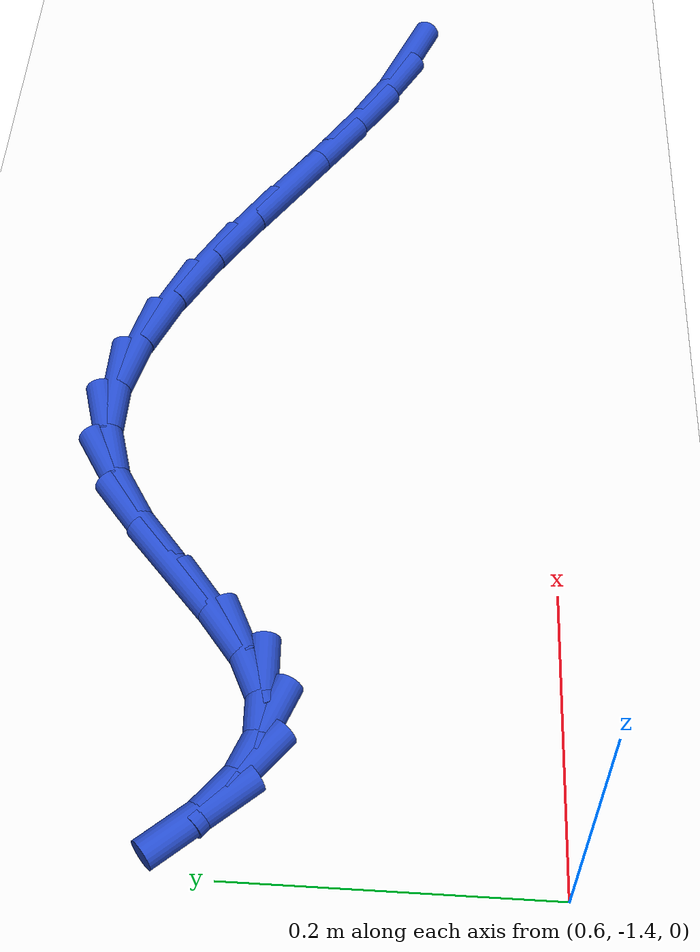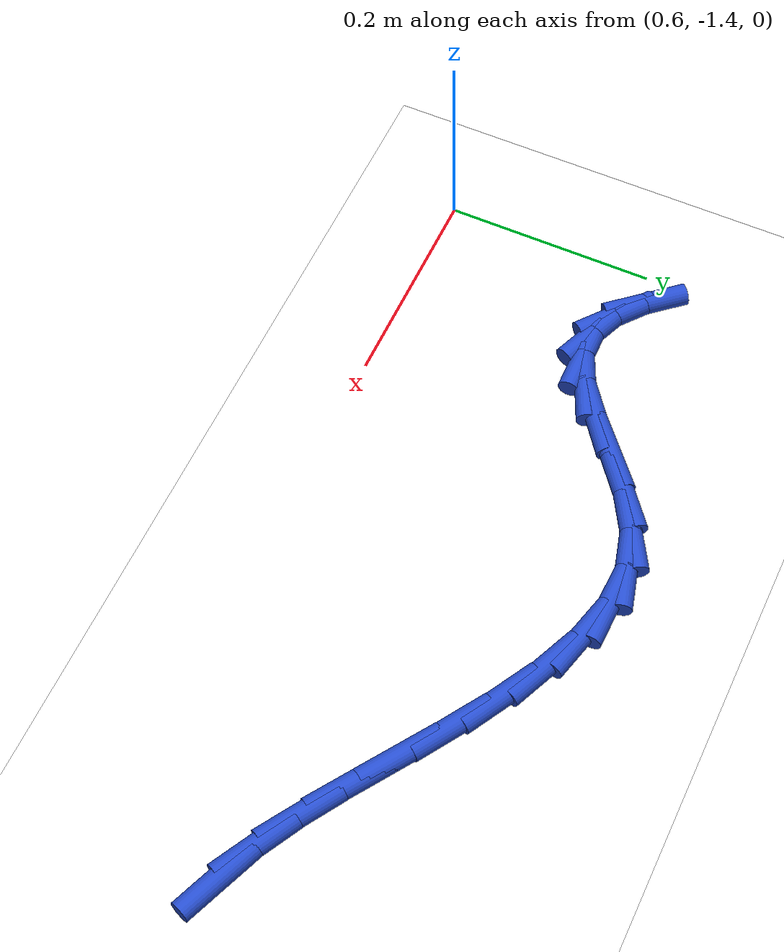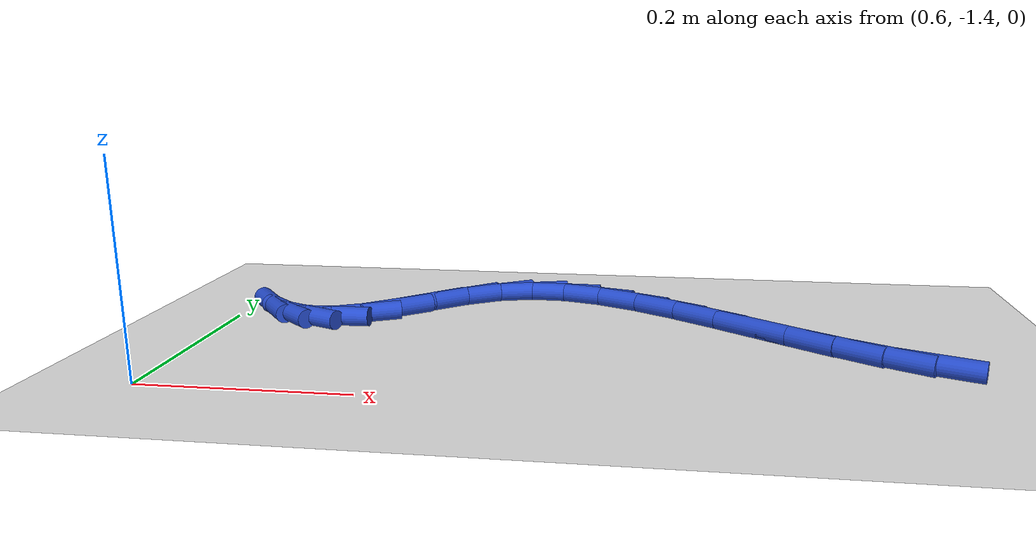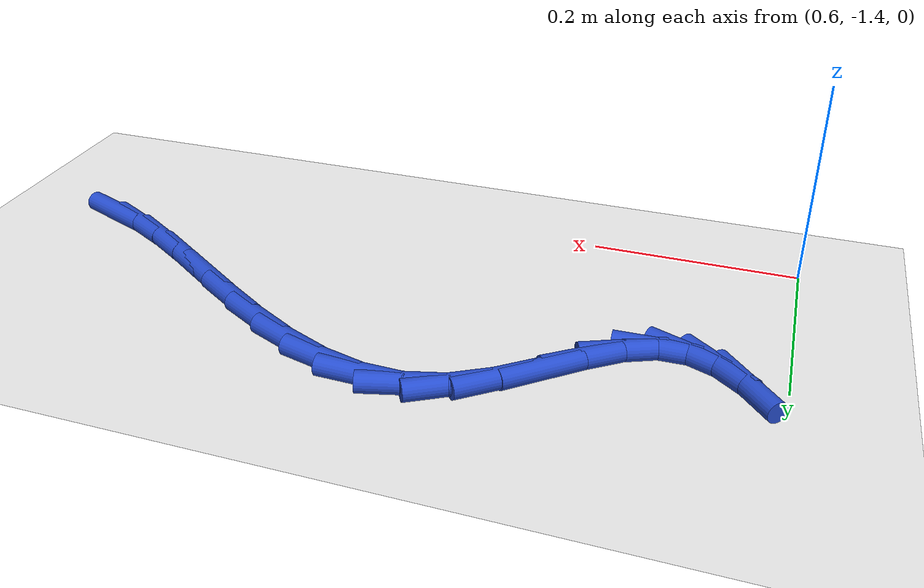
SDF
<sdf version="1.6">
 <world name="default">
  <model name="ground_plane">
   <static>1</static>
   <link name="link">
    <collision name="collision">
     <geometry><plane><normal>0 0 1</normal><size>100 100</size></plane></geometry>
     <surface><friction><ode><mu>100</mu><mu2>50</mu2></ode></friction></surface>
    </collision>
    <visual name="visual">
     <cast_shadows>0</cast_shadows>
     <geometry><plane><normal>0 0 1</normal><size>100 100</size></plane></geometry>
     <material>
      <script><uri>file://media/materials/scripts/gazebo.material</uri><name>Gazebo/WhiteGlow</name></script>
     </material>
    </visual>
   </link>
  </model>
  <model name="line">
   <link name="link_187">
    <pose>1.3002542062548703 -1.29245563052104 0.01 0 1.57 -0.3807308607366175</pose>
    <collision name="collision">
     <geometry><cylinder><radius>0.01</radius><length>0.08</length></cylinder></geometry>
    </collision>
    <visual name="visual">
     <material>
      <script><name>Gazebo/Blue</name><uri>file://media/materials/scripts/gazebo.material</uri></script>
     </material>
     <geometry><cylinder><radius>0.01</radius><length>0.08</length></cylinder></geometry>
    </visual>
   </link>
   <link name="link_188">
    <pose>1.2628305010286327 -1.2774764023848308 0.01 0 1.57 -0.4966049258590174</pose>
    <collision name="collision">
     <geometry><cylinder><radius>0.01</radius><length>0.08</length></cylinder></geometry>
    </collision>
    <visual name="visual">
     <material>
      <script><name>Gazebo/Blue</name><uri>file://media/materials/scripts/gazebo.material</uri></script>
     </material>
     <geometry><cylinder><radius>0.01</radius><length>0.08</length></cylinder></geometry>
    </visual>
   </link>
   <link name="link_189">
    <pose>1.2240627478774695 -1.2564680673103064 0.01 0 1.57 -0.5635573753410068</pose>
    <collision name="collision">
     <geometry><cylinder><radius>0.01</radius><length>0.08</length></cylinder></geometry>
    </collision>
    <visual name="visual">
     <material>
      <script><name>Gazebo/Blue</name><uri>file://media/materials/scripts/gazebo.material</uri></script>
     </material>
     <geometry><cylinder><radius>0.01</radius><length>0.08</length></cylinder></geometry>
    </visual>
   </link>
   <link name="link_190">
    <pose>1.1842756444777567 -1.2313259485014023 0.01 0 1.57 -0.5946891276298775</pose>
    <collision name="collision">
     <geometry><cylinder><radius>0.01</radius><length>0.08</length></cylinder></geometry>
    </collision>
    <visual name="visual">
     <material>
      <script><name>Gazebo/Blue</name><uri>file://media/materials/scripts/gazebo.material</uri></script>
     </material>
     <geometry><cylinder><radius>0.01</radius><length>0.08</length></cylinder></geometry>
    </visual>
   </link>
   <link name="link_191">
    <pose>1.1437938885058683 -1.203945369162052 0.01 0 1.57 -0.5962479622182153</pose>
    <collision name="collision">
     <geometry><cylinder><radius>0.01</radius><length>0.08</length></cylinder></geometry>
    </collision>
    <visual name="visual">
     <material>
      <script><name>Gazebo/Blue</name><uri>file://media/materials/scripts/gazebo.material</uri></script>
     </material>
     <geometry><cylinder><radius>0.01</radius><length>0.08</length></cylinder></geometry>
    </visual>
   </link>
   <link name="link_192">
    <pose>1.1029421776381783 -1.1762216524961897 0.01 0 1.57 -0.5692693241452842</pose>
    <collision name="collision">
     <geometry><cylinder><radius>0.01</radius><length>0.08</length></cylinder></geometry>
    </collision>
    <visual name="visual">
     <material>
      <script><name>Gazebo/Blue</name><uri>file://media/materials/scripts/gazebo.material</uri></script>
     </material>
     <geometry><cylinder><radius>0.01</radius><length>0.08</length></cylinder></geometry>
    </visual>
   </link>
   <link name="link_193">
    <pose>1.062045209551064 -1.1500501217077512 0.01 0 1.57 -0.5100797627270489</pose>
    <collision name="collision">
     <geometry><cylinder><radius>0.01</radius><length>0.08</length></cylinder></geometry>
    </collision>
    <visual name="visual">
     <material>
      <script><name>Gazebo/Blue</name><uri>file://media/materials/scripts/gazebo.material</uri></script>
     </material>
     <geometry><cylinder><radius>0.01</radius><length>0.08</length></cylinder></geometry>
    </visual>
   </link>
   <link name="link_194">
    <pose>1.021427681920899 -1.1273261000006705 0.01 0 1.57 -0.4097923331356147</pose>
    <collision name="collision">
     <geometry><cylinder><radius>0.01</radius><length>0.08</length></cylinder></geometry>
    </collision>
    <visual name="visual">
     <material>
      <script><name>Gazebo/Blue</name><uri>file://media/materials/scripts/gazebo.material</uri></script>
     </material>
     <geometry><cylinder><radius>0.01</radius><length>0.08</length></cylinder></geometry>
    </visual>
   </link>
   <link name="link_195">
    <pose>0.9814142924240578 -1.1099449105788814 0.01 0 1.57 -0.25391385832931185</pose>
    <collision name="collision">
     <geometry><cylinder><radius>0.01</radius><length>0.08</length></cylinder></geometry>
    </collision>
    <visual name="visual">
     <material>
      <script><name>Gazebo/Blue</name><uri>file://media/materials/scripts/gazebo.material</uri></script>
     </material>
     <geometry><cylinder><radius>0.01</radius><length>0.08</length></cylinder></geometry>
    </visual>
   </link>
   <link name="link_196">
    <pose>0.9423297387369161 -1.0998018766463193 0.01 0 1.57 -0.026679579056644063</pose>
    <collision name="collision">
     <geometry><cylinder><radius>0.01</radius><length>0.08</length></cylinder></geometry>
    </collision>
    <visual name="visual">
     <material>
      <script><name>Gazebo/Blue</name><uri>file://media/materials/scripts/gazebo.material</uri></script>
     </material>
     <geometry><cylinder><radius>0.01</radius><length>0.08</length></cylinder></geometry>
    </visual>
   </link>
   <link name="link_197">
    <pose>0.904498718535848 -1.0987923214069182 0.01 0 1.57 0.26900299253684634</pose>
    <collision name="collision">
     <geometry><cylinder><radius>0.01</radius><length>0.08</length></cylinder></geometry>
    </collision>
    <visual name="visual">
     <material>
      <script><name>Gazebo/Blue</name><uri>file://media/materials/scripts/gazebo.material</uri></script>
     </material>
     <geometry><cylinder><radius>0.01</radius><length>0.08</length></cylinder></geometry>
    </visual>
   </link>
   <link name="link_198">
    <pose>0.8682445124486016 -1.1087870643256401 0.01 0 1.57 0.5369164050899159</pose>
    <collision name="collision">
     <geometry><cylinder><radius>0.01</radius><length>0.08</length></cylinder></geometry>
    </collision>
    <visual name="visual">
     <material>
      <script><name>Gazebo/Blue</name><uri>file://media/materials/scripts/gazebo.material</uri></script>
     </material>
     <geometry><cylinder><radius>0.01</radius><length>0.08</length></cylinder></geometry>
    </visual>
   </link>
   <link name="link_199">
    <pose>0.8337550695646155 -1.1293167590992543 0.01 0 1.57 0.6771002914440665</pose>
    <collision name="collision">
     <geometry><cylinder><radius>0.01</radius><length>0.08</length></cylinder></geometry>
    </collision>
    <visual name="visual">
     <material>
      <script><name>Gazebo/Blue</name><uri>file://media/materials/scripts/gazebo.material</uri></script>
     </material>
     <geometry><cylinder><radius>0.01</radius><length>0.08</length></cylinder></geometry>
    </visual>
   </link>
   <link name="link_200">
    <pose>0.8009729925349316 -1.1556695055922128 0.01 0 1.57 0.7143209367839319</pose>
    <collision name="collision">
     <geometry><cylinder><radius>0.01</radius><length>0.08</length></cylinder></geometry>
    </collision>
    <visual name="visual">
     <material>
      <script><name>Gazebo/Blue</name><uri>file://media/materials/scripts/gazebo.material</uri></script>
     </material>
     <geometry><cylinder><radius>0.01</radius><length>0.08</length></cylinder></geometry>
    </visual>
   </link>
   <link name="link_201">
    <pose>0.7698149916720416 -1.1826856709002687 0.01 0 1.57 0.6501030138094133</pose>
    <collision name="collision">
     <geometry><cylinder><radius>0.01</radius><length>0.08</length></cylinder></geometry>
    </collision>
    <visual name="visual">
     <material>
      <script><name>Gazebo/Blue</name><uri>file://media/materials/scripts/gazebo.material</uri></script>
     </material>
     <geometry><cylinder><radius>0.01</radius><length>0.08</length></cylinder></geometry>
    </visual>
   </link>
   <link name="link_202">
    <pose>0.7401977772884346 -1.2052056221191771 0.01 0 1.57 0.42964798006950305</pose>
    <collision name="collision">
     <geometry><cylinder><radius>0.01</radius><length>0.08</length></cylinder></geometry>
    </collision>
    <visual name="visual">
     <material>
      <script><name>Gazebo/Blue</name><uri>file://media/materials/scripts/gazebo.material</uri></script>
     </material>
     <geometry><cylinder><radius>0.01</radius><length>0.08</length></cylinder></geometry>
    </visual>
   </link>
   <link name="link_203">
    <pose>0.7120373623008899 -1.2181085843322335 0.01 0 1.57 0.02293398561176577</pose>
    <collision name="collision">
     <geometry><cylinder><radius>0.01</radius><length>0.08</length></cylinder></geometry>
    </collision>
    <visual name="visual">
     <material>
      <script><name>Gazebo/Blue</name><uri>file://media/materials/scripts/gazebo.material</uri></script>
     </material>
     <geometry><cylinder><radius>0.01</radius><length>0.08</length></cylinder></geometry>
    </visual>
   </link>
   <link name="link_204">
    <pose>0.6852057840071837 -1.2187240472710874 0.01 0 1.57 -0.3870189759136605</pose>
    <collision name="collision">
     <geometry><cylinder><radius>0.01</radius><length>0.08</length></cylinder></geometry>
    </collision>
    <visual name="visual">
     <material>
      <script><name>Gazebo/Blue</name><uri>file://media/materials/scripts/gazebo.material</uri></script>
     </material>
     <geometry><cylinder><radius>0.01</radius><length>0.08</length></cylinder></geometry>
    </visual>
   </link>
   <link name="link_205">
    <pose>0.659505662559023 -1.2082493343183096 0.01 0 1.57 -0.6798595648010175</pose>
    <collision name="collision">
     <geometry><cylinder><radius>0.01</radius><length>0.08</length></cylinder></geometry>
    </collision>
    <visual name="visual">
     <material>
      <script><name>Gazebo/Blue</name><uri>file://media/materials/scripts/gazebo.material</uri></script>
     </material>
     <geometry><cylinder><radius>0.01</radius><length>0.08</length></cylinder></geometry>
    </visual>
   </link>
   <link name="link_206">
    <pose>0.6347334976200201 -1.1882227945418269 0.01 0 1.57 -0.8618944661931955</pose>
    <collision name="collision">
     <geometry><cylinder><radius>0.01</radius><length>0.08</length></cylinder></geometry>
    </collision>
    <visual name="visual">
     <material>
      <script><name>Gazebo/Blue</name><uri>file://media/materials/scripts/gazebo.material</uri></script>
     </material>
     <geometry><cylinder><radius>0.01</radius><length>0.08</length></cylinder></geometry>
    </visual>
   </link>
  </model>
 </world>
</sdf>
